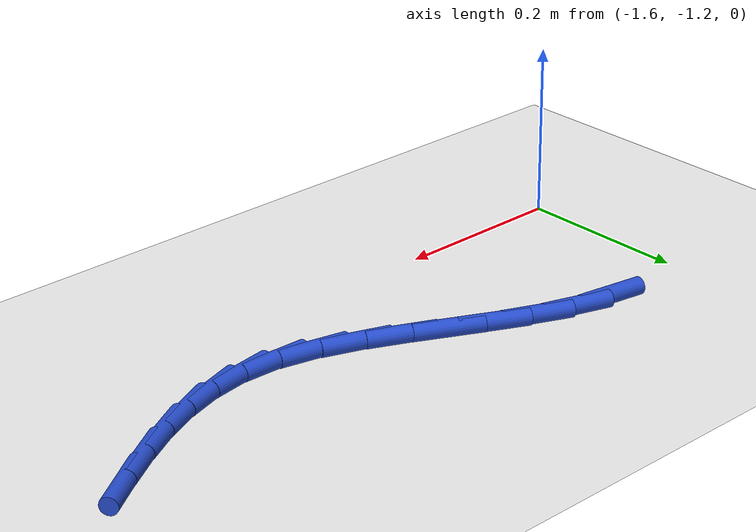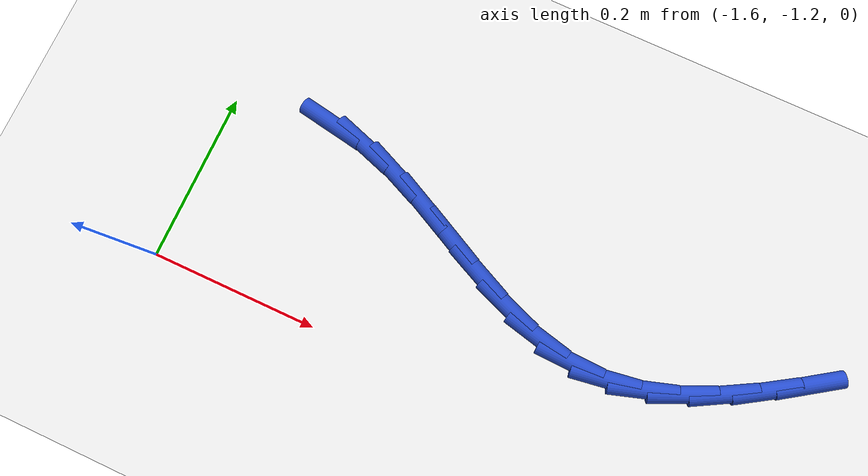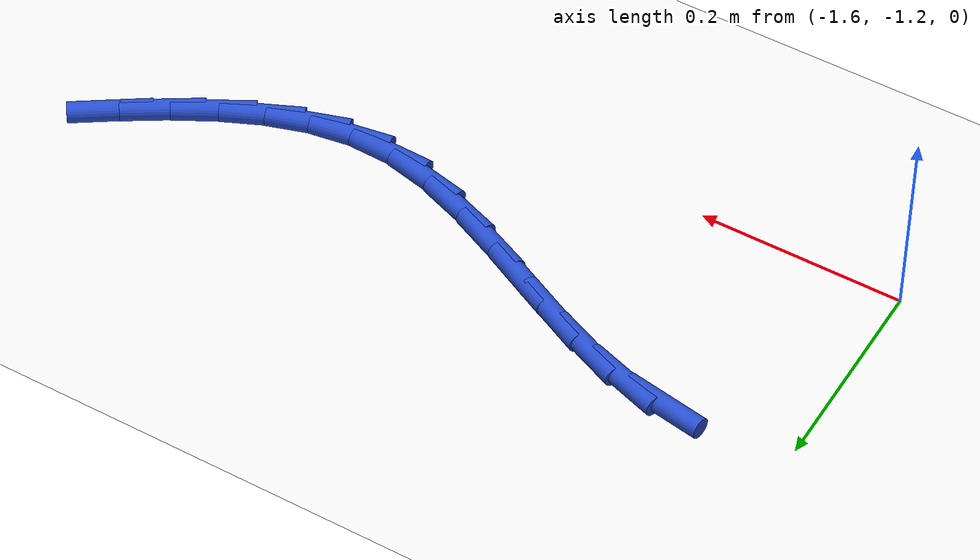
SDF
<sdf version="1.6">
 <world name="default">
  <model name="ground_plane">
   <static>1</static>
   <link name="link">
    <collision name="collision">
     <geometry><plane><normal>0 0 1</normal><size>100 100</size></plane></geometry>
     <surface><friction><ode><mu>100</mu><mu2>50</mu2></ode></friction></surface>
    </collision>
    <visual name="visual">
     <cast_shadows>0</cast_shadows>
     <geometry><plane><normal>0 0 1</normal><size>100 100</size></plane></geometry>
     <material>
      <script><uri>file://media/materials/scripts/gazebo.material</uri><name>Gazebo/WhiteGlow</name></script>
     </material>
    </visual>
   </link>
  </model>
  <model name="line">
   <link name="link_135">
    <pose>-1.4818504574737508 -0.9795658628536028 0.01 0 1.57 -0.16765721354933608</pose>
    <collision name="collision">
     <geometry><cylinder><radius>0.01</radius><length>0.08</length></cylinder></geometry>
    </collision>
    <visual name="visual">
     <material>
      <script><name>Gazebo/Blue</name><uri>file://media/materials/scripts/gazebo.material</uri></script>
     </material>
     <geometry><cylinder><radius>0.01</radius><length>0.08</length></cylinder></geometry>
    </visual>
   </link>
   <link name="link_136">
    <pose>-1.4371092546839557 -0.9871381310359336 0.01 0 1.57 -0.3167803534864052</pose>
    <collision name="collision">
     <geometry><cylinder><radius>0.01</radius><length>0.08</length></cylinder></geometry>
    </collision>
    <visual name="visual">
     <material>
      <script><name>Gazebo/Blue</name><uri>file://media/materials/scripts/gazebo.material</uri></script>
     </material>
     <geometry><cylinder><radius>0.01</radius><length>0.08</length></cylinder></geometry>
    </visual>
   </link>
   <link name="link_137">
    <pose>-1.3919172332843164 -1.0019529784355814 0.01 0 1.57 -0.41000386075752565</pose>
    <collision name="collision">
     <geometry><cylinder><radius>0.01</radius><length>0.08</length></cylinder></geometry>
    </collision>
    <visual name="visual">
     <material>
      <script><name>Gazebo/Blue</name><uri>file://media/materials/scripts/gazebo.material</uri></script>
     </material>
     <geometry><cylinder><radius>0.01</radius><length>0.08</length></cylinder></geometry>
    </visual>
   </link>
   <link name="link_138">
    <pose>-1.3464609252101998 -1.0217099170185373 0.01 0 1.57 -0.45715258272924897</pose>
    <collision name="collision">
     <geometry><cylinder><radius>0.01</radius><length>0.08</length></cylinder></geometry>
    </collision>
    <visual name="visual">
     <material>
      <script><name>Gazebo/Blue</name><uri>file://media/materials/scripts/gazebo.material</uri></script>
     </material>
     <geometry><cylinder><radius>0.01</radius><length>0.08</length></cylinder></geometry>
    </visual>
   </link>
   <link name="link_139">
    <pose>-1.3009268623969692 -1.0441084587507936 0.01 0 1.57 -0.464123249158947</pose>
    <collision name="collision">
     <geometry><cylinder><radius>0.01</radius><length>0.08</length></cylinder></geometry>
    </collision>
    <visual name="visual">
     <material>
      <script><name>Gazebo/Blue</name><uri>file://media/materials/scripts/gazebo.material</uri></script>
     </material>
     <geometry><cylinder><radius>0.01</radius><length>0.08</length></cylinder></geometry>
    </visual>
   </link>
   <link name="link_140">
    <pose>-1.2555015767799915 -1.0668481155983436 0.01 0 1.57 -0.4315134921208262</pose>
    <collision name="collision">
     <geometry><cylinder><radius>0.01</radius><length>0.08</length></cylinder></geometry>
    </collision>
    <visual name="visual">
     <material>
      <script><name>Gazebo/Blue</name><uri>file://media/materials/scripts/gazebo.material</uri></script>
     </material>
     <geometry><cylinder><radius>0.01</radius><length>0.08</length></cylinder></geometry>
    </visual>
   </link>
   <link name="link_141">
    <pose>-1.2103716002946305 -1.0876283995271783 0.01 0 1.57 -0.3543919928617719</pose>
    <collision name="collision">
     <geometry><cylinder><radius>0.01</radius><length>0.08</length></cylinder></geometry>
    </collision>
    <visual name="visual">
     <material>
      <script><name>Gazebo/Blue</name><uri>file://media/materials/scripts/gazebo.material</uri></script>
     </material>
     <geometry><cylinder><radius>0.01</radius><length>0.08</length></cylinder></geometry>
    </visual>
   </link>
   <link name="link_142">
    <pose>-1.1657234648762513 -1.1041488225032905 0.01 0 1.57 -0.22271267502510816</pose>
    <collision name="collision">
     <geometry><cylinder><radius>0.01</radius><length>0.08</length></cylinder></geometry>
    </collision>
    <visual name="visual">
     <material>
      <script><name>Gazebo/Blue</name><uri>file://media/materials/scripts/gazebo.material</uri></script>
     </material>
     <geometry><cylinder><radius>0.01</radius><length>0.08</length></cylinder></geometry>
    </visual>
   </link>
   <link name="link_143">
    <pose>-1.1217437024602206 -1.114108896492672 0.01 0 1.57 -0.03523089671622677</pose>
    <collision name="collision">
     <geometry><cylinder><radius>0.01</radius><length>0.08</length></cylinder></geometry>
    </collision>
    <visual name="visual">
     <material>
      <script><name>Gazebo/Blue</name><uri>file://media/materials/scripts/gazebo.material</uri></script>
     </material>
     <geometry><cylinder><radius>0.01</radius><length>0.08</length></cylinder></geometry>
    </visual>
   </link>
   <link name="link_144">
    <pose>-1.0785777172558704 -1.1156303023756373 0.01 0 1.57 0.15137073888728322</pose>
    <collision name="collision">
     <geometry><cylinder><radius>0.01</radius><length>0.08</length></cylinder></geometry>
    </collision>
    <visual name="visual">
     <material>
      <script><name>Gazebo/Blue</name><uri>file://media/materials/scripts/gazebo.material</uri></script>
     </material>
     <geometry><cylinder><radius>0.01</radius><length>0.08</length></cylinder></geometry>
    </visual>
   </link>
   <link name="link_145">
    <pose>-1.036144612573006 -1.1091576601851854 0.01 0 1.57 0.30607142557960915</pose>
    <collision name="collision">
     <geometry><cylinder><radius>0.01</radius><length>0.08</length></cylinder></geometry>
    </collision>
    <visual name="visual">
     <material>
      <script><name>Gazebo/Blue</name><uri>file://media/materials/scripts/gazebo.material</uri></script>
     </material>
     <geometry><cylinder><radius>0.01</radius><length>0.08</length></cylinder></geometry>
    </visual>
   </link>
   <link name="link_146">
    <pose>-0.9942860701581948 -1.0959303087596006 0.01 0 1.57 0.424717772885295</pose>
    <collision name="collision">
     <geometry><cylinder><radius>0.01</radius><length>0.08</length></cylinder></geometry>
    </collision>
    <visual name="visual">
     <material>
      <script><name>Gazebo/Blue</name><uri>file://media/materials/scripts/gazebo.material</uri></script>
     </material>
     <geometry><cylinder><radius>0.01</radius><length>0.08</length></cylinder></geometry>
    </visual>
   </link>
   <link name="link_147">
    <pose>-0.9528437040298118 -1.0771882821552239 0.01 0 1.57 0.5096247867482043</pose>
    <collision name="collision">
     <geometry><cylinder><radius>0.01</radius><length>0.08</length></cylinder></geometry>
    </collision>
    <visual name="visual">
     <material>
      <script><name>Gazebo/Blue</name><uri>file://media/materials/scripts/gazebo.material</uri></script>
     </material>
     <geometry><cylinder><radius>0.01</radius><length>0.08</length></cylinder></geometry>
    </visual>
   </link>
   <link name="link_148">
    <pose>-0.9116591282062309 -1.054171614428397 0.01 0 1.57 0.5651019375492656</pose>
    <collision name="collision">
     <geometry><cylinder><radius>0.01</radius><length>0.08</length></cylinder></geometry>
    </collision>
    <visual name="visual">
     <material>
      <script><name>Gazebo/Blue</name><uri>file://media/materials/scripts/gazebo.material</uri></script>
     </material>
     <geometry><cylinder><radius>0.01</radius><length>0.08</length></cylinder></geometry>
    </visual>
   </link>
   <link name="link_149">
    <pose>-0.8705739567058282 -1.0281203396354617 0.01 0 1.57 0.5949766313479619</pose>
    <collision name="collision">
     <geometry><cylinder><radius>0.01</radius><length>0.08</length></cylinder></geometry>
    </collision>
    <visual name="visual">
     <material>
      <script><name>Gazebo/Blue</name><uri>file://media/materials/scripts/gazebo.material</uri></script>
     </material>
     <geometry><cylinder><radius>0.01</radius><length>0.08</length></cylinder></geometry>
    </visual>
   </link>
  </model>
 </world>
</sdf>
